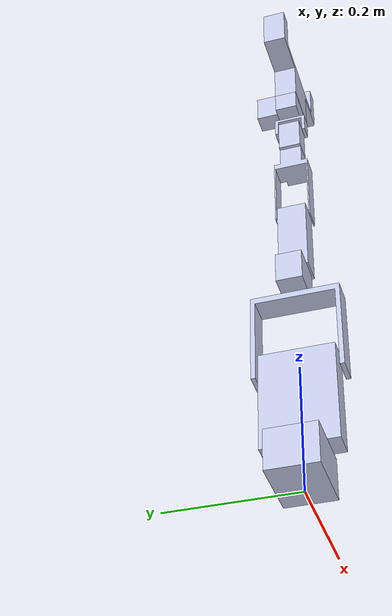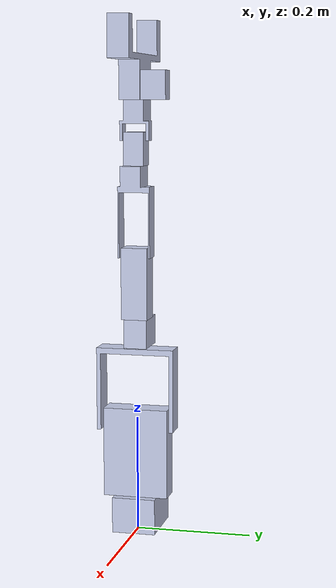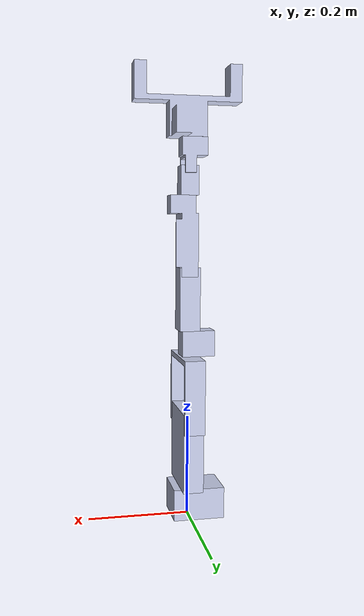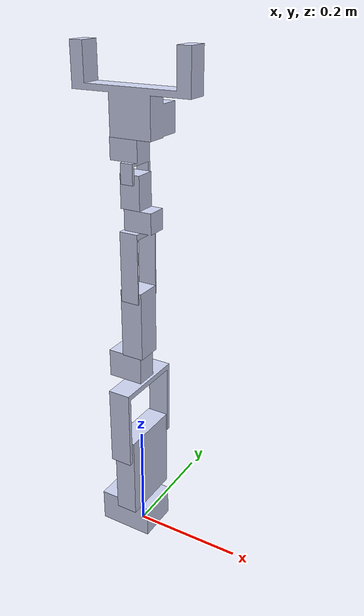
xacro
<?xml version="1.0" ?>
<!-- Revolute-Revolute Manipulator -->
<robot name="finalarm_simplified" xmlns:xacro="http://www.ros.org/wiki/xacro">
  <!-- Import all Gazebo-customization elements -->
  <xacro:include
    filename="$(find finalarm_simplified_description)/urdf/finalarm_simplified.gazebo"
  />

  <link name="root">
    <visual>
      <origin xyz="0 0 0" rpy="0 0 0" />
      <geometry>
        <box size="0 0 0" />
      </geometry>
    </visual>
    <collision>
      <origin xyz="0 0 0" rpy="0 0 0" />
      <geometry>
        <box size="0 0 0" />
      </geometry>
    </collision>
  </link>

  <!-- Used for fixing robot to Gazebo 'base_link' -->
  <link name="world" />

  <joint name="connect_root_and_world" type="fixed">
    <parent link="world" />
    <child link="root" />
    <axis xyz="0 0 0" />
    <origin xyz="0 0 0" rpy="0 0 0" />
  </joint>

  <joint name="root_to_base_link" type="fixed">
    <parent link="root" />
    <child link="base_link" />
    <axis xyz="0 0 0" />
    <origin xyz="0 0 0" rpy="0 0 0" />
  </joint>

  <link name="base_link">
    <inertial>
      <origin xyz="-0.0164 -8.67361737988404E-19 0.0311" rpy="0 0 0" />
      <mass value="0.481547424" />
      <inertia
        ixx="0.00259388526"
        ixy="-0.00000005038"
        ixz="-0.00033538856"
        iyy="0.00279542583"
        iyz="-0.00000008121"
        izz="0.00116940616"
      />
    </inertial>
    <visual>
      <origin xyz="0 0 0" rpy="0 0 0" />
      <geometry>
        <mesh
          filename="package://finalarm_simplified_description/meshes/base_link.STL"
        />
      </geometry>
      <material name="">
        <color rgba="0.792156862745098 0.819607843137255 0.933333333333333 1" />
      </material>
    </visual>
    <collision>
      <origin xyz="0 0 0" rpy="0 0 0" />
      <geometry>
        <mesh
          filename="package://finalarm_simplified_description/meshes/base_link.STL"
        />
      </geometry>
    </collision>
  </link>
  <link name="link_2">
    <inertial>
      <origin
        xyz="-1.38777878078145E-17 -4.33680868994202E-18 -0.078375"
        rpy="0 0 0"
      />
      <mass value="0.7142784" />
      <inertia
        ixx="0.00096626194"
        ixy="-0.00000006431"
        ixz="0.00000032990"
        iyy="0.00575735994"
        iyz="-0.00039309867"
        izz="0.00066079574"
      />
    </inertial>
    <visual>
      <origin xyz="0 0 0" rpy="0 0 0" />
      <geometry>
        <mesh
          filename="package://finalarm_simplified_description/meshes/link_2.STL"
        />
      </geometry>
      <material name="">
        <color rgba="0.792156862745098 0.819607843137255 0.933333333333333 1" />
      </material>
    </visual>
    <collision>
      <origin xyz="0 0 0" rpy="0 0 0" />
      <geometry>
        <mesh
          filename="package://finalarm_simplified_description/meshes/link_2.STL"
        />
      </geometry>
    </collision>
  </link>
  <joint name="joint_1" type="revolute">
    <origin xyz="0 0 0.0622" rpy="3.1416 0 3.1416" />
    <parent link="base_link" />
    <child link="link_2" />
    <axis xyz="0 0 -1" />
    <limit lower="-3.14" upper="3.14" effort="6" velocity="2" />
    <dynamics damping="0.5" />
  </joint>
  <link name="link_3">
    <inertial>
      <origin
        xyz="0.00913796893535261 -0.110721113647521 0.000700000000000008"
        rpy="0 0 0"
      />
      <mass value="0.26363602" />
      <inertia
        ixx="0.00067487030"
        ixy="-0.00005184685"
        ixz="-0.00000255096"
        iyy="0.00024791507"
        iyz="0.00002448920"
        izz="0.000052259169"
      />
    </inertial>
    <visual>
      <origin xyz="0 0 0" rpy="0 0 0" />
      <geometry>
        <mesh
          filename="package://finalarm_simplified_description/meshes/link_3.STL"
        />
      </geometry>
      <material name="">
        <color rgba="0.792156862745098 0.819607843137255 0.933333333333333 1" />
      </material>
    </visual>
    <collision>
      <origin xyz="0 0 0" rpy="0 0 0" />
      <geometry>
        <mesh
          filename="package://finalarm_simplified_description/meshes/link_3.STL"
        />
      </geometry>
    </collision>
  </link>
  <joint name="joint_2" type="revolute">
    <origin xyz="0 0 -0.14225" rpy="1.5708 0 0" />
    <parent link="link_2" />
    <child link="link_3" />
    <axis xyz="0 0 1" />
    <limit lower="-2.35" upper="2.35" effort="6" velocity="2" />
    <dynamics damping="0.5" />
  </joint>
  <link name="link_4">
    <inertial>
      <origin xyz="0 -8.67361737988404E-19 -0.06225" rpy="0 0 0" />
      <mass value="0.2302254" />
      <inertia
        ixx="0.00012288342"
        ixy="-0.00000000216"
        ixz="0.00000001618"
        iyy="0.00011093520"
        iyz="0.00000039768"
        izz="0.00002956657"
      />
    </inertial>
    <visual>
      <origin xyz="0 0 0" rpy="0 0 0" />
      <geometry>
        <mesh
          filename="package://finalarm_simplified_description/meshes/link_4.STL"
        />
      </geometry>
      <material name="">
        <color rgba="0.792156862745098 0.819607843137255 0.933333333333333 1" />
      </material>
    </visual>
    <collision>
      <origin xyz="0 0 0" rpy="0 0 0" />
      <geometry>
        <mesh
          filename="package://finalarm_simplified_description/meshes/link_4.STL"
        />
      </geometry>
    </collision>
  </link>
  <joint name="joint_3" type="revolute">
    <origin xyz="0 -0.1721 0.0007" rpy="-1.5708 0 0" />
    <parent link="link_3" />
    <child link="link_4" />
    <axis xyz="0 0 -1" />
    <limit lower="-3.14" upper="3.14" effort="6" velocity="2" />
    <dynamics damping="0.5" />
  </joint>
  <link name="link_5">
    <inertial>
      <origin
        xyz="-0.00941019053261395 0.12018845656372 -0.00050000000000005"
        rpy="0 0 0"
      />
      <mass value="0.09729148" />
      <inertia
        ixx="0.00014398020"
        ixy="-0.00001235082"
        ixz="0.00000001592"
        iyy="0.00003078676"
        iyz="0.00000000000"
        izz="0.00013784036"
      />
    </inertial>
    <visual>
      <origin xyz="0 0 0" rpy="0 0 0" />
      <geometry>
        <mesh
          filename="package://finalarm_simplified_description/meshes/link_5.STL"
        />
      </geometry>
      <material name="">
        <color rgba="0.792156862745098 0.819607843137255 0.933333333333333 1" />
      </material>
    </visual>
    <collision>
      <origin xyz="0 0 0" rpy="0 0 0" />
      <geometry>
        <mesh
          filename="package://finalarm_simplified_description/meshes/link_5.STL"
        />
      </geometry>
    </collision>
  </link>
  <joint name="joint_4" type="revolute">
    <origin xyz="0 0 -0.11" rpy="-1.5708 0 0" />
    <parent link="link_4" />
    <child link="link_5" />
    <axis xyz="0 0 -1" />
    <limit lower="-2.6" upper="2.6" effort="6" velocity="2" />
    <dynamics damping="0.5" />
  </joint>
  <link name="link_6">
    <inertial>
      <origin xyz="0 0 -0.0284" rpy="0 0 0" />
      <mass value="0.0717838399999999" />
      <inertia
        ixx="0.00001425862"
        ixy="0.00000000002"
        ixz="0.00000001440"
        iyy="0.00001225892"
        iyz="-0.00000018076"
        izz="0.00000782673"
      />
    </inertial>
    <visual>
      <origin xyz="0 0 0" rpy="0 0 0" />
      <geometry>
        <mesh
          filename="package://finalarm_simplified_description/meshes/link_6.STL"
        />
      </geometry>
      <material name="">
        <color rgba="0.792156862745098 0.819607843137255 0.933333333333333 1" />
      </material>
    </visual>
    <collision>
      <origin xyz="0 0 0" rpy="0 0 0" />
      <geometry>
        <mesh
          filename="package://finalarm_simplified_description/meshes/link_6.STL"
        />
      </geometry>
    </collision>
  </link>
  <joint name="joint_5" type="revolute">
    <origin xyz="0 0.1551 -0.0005" rpy="-1.5708 0 3.1416" />
    <parent link="link_5" />
    <child link="link_6" />
    <axis xyz="0 0 -1" />
    <limit lower="-3.14" upper="3.14" effort="6" velocity="2" />
    <dynamics damping="0.5" />
  </joint>
  <link name="link_7">
    <inertial>
      <origin
        xyz="-0.00826463614894074 0.044192432559462 0.000250000000000077"
        rpy="0 0 0"
      />
      <mass value="0.07582828" />
      <inertia
        ixx="0.00002339630"
        ixy="-0.00000217744"
        ixz="0.00000002669"
        iyy="0.00001609019"
        iyz="-0.00000018683"
        izz="0.00002459523"
      />
    </inertial>
    <visual>
      <origin xyz="0 0 0" rpy="0 0 0" />
      <geometry>
        <mesh
          filename="package://finalarm_simplified_description/meshes/link_7.STL"
        />
      </geometry>
      <material name="">
        <color rgba="0.792156862745098 0.819607843137255 0.933333333333333 1" />
      </material>
    </visual>
    <collision>
      <origin xyz="0 0 0" rpy="0 0 0" />
      <geometry>
        <mesh
          filename="package://finalarm_simplified_description/meshes/link_7.STL"
        />
      </geometry>
    </collision>
  </link>
  <joint name="joint_6" type="revolute">
    <origin xyz="0 0 -0.0448" rpy="-1.5708 0 0" />
    <parent link="link_6" />
    <child link="link_7" />
    <axis xyz="0 0 1" />
    <limit lower="-1.75" upper="1.75" effort="6" velocity="2" />
    <dynamics damping="0.5" />
  </joint>
  <link name="link_8">
    <inertial>
      <origin
        xyz="-0.00258077730485411 0.00608919416388292 -0.0569223421804808"
        rpy="0 0 0"
      />
      <mass value="0.4263865924" />
      <inertia
        ixx="0.00069912591"
        ixy="-0.00003847590"
        ixz="-0.00003706028"
        iyy="0.00186495000"
        iyz="0.00008417977"
        izz="0.00144091562"
      />
    </inertial>
    <visual>
      <origin xyz="0 0 0" rpy="0 0 0" />
      <geometry>
        <mesh
          filename="package://finalarm_simplified_description/meshes/link_8.STL"
        />
      </geometry>
      <material name="">
        <color rgba="0.792156862745098 0.819607843137255 0.933333333333333 1" />
      </material>
    </visual>
    <collision>
      <origin xyz="0 0 0" rpy="0 0 0" />
      <geometry>
        <mesh
          filename="package://finalarm_simplified_description/meshes/link_8.STL"
        />
      </geometry>
    </collision>
  </link>
  <joint name="joint_7" type="revolute">
    <origin xyz="0.0035 0.0665 0.00025" rpy="-1.5708 0 3.1416" />
    <parent link="link_7" />
    <child link="link_8" />
    <axis xyz="0 0 -1" />
    <limit lower="-3.14" upper="3.14" effort="6" velocity="2" />
    <dynamics damping="0.5" />
  </joint>
  <link name="link_eef" />
  <joint name="joint_eef" type="fixed">
    <origin xyz="0 0 -0.13275" rpy="3.14159265358979 0 3.14159265358979" />
    <parent link="link_8" />
    <child link="link_eef" />
    <axis xyz="0 0 0" />
  </joint>

  <!-- transmission that link actuators to joints-->
  <transmission name="tran1">
    <type>transmission_interface/SimpleTransmission</type>
    <joint name="joint_1">
      <hardwareInterface
      >hardware_interface/PositionJointInterface</hardwareInterface>
    </joint>
    <actuator name="motor_1">
      <hardwareInterface
      >hardware_interface/PositionJointInterface</hardwareInterface>
      <mechanicalReduction>1</mechanicalReduction>
    </actuator>
  </transmission>

  <transmission name="tran2">
    <type>transmission_interface/SimpleTransmission</type>
    <joint name="joint_2">
      <hardwareInterface
      >hardware_interface/PositionJointInterface</hardwareInterface>
    </joint>
    <actuator name="motor_2">
      <hardwareInterface
      >hardware_interface/PositionJointInterface</hardwareInterface>
      <mechanicalReduction>1</mechanicalReduction>
    </actuator>
  </transmission>

  <transmission name="tran3">
    <type>transmission_interface/SimpleTransmission</type>
    <joint name="joint_3">
      <hardwareInterface
      >hardware_interface/PositionJointInterface</hardwareInterface>
    </joint>
    <actuator name="motor_3">
      <hardwareInterface
      >hardware_interface/PositionJointInterface</hardwareInterface>
      <mechanicalReduction>1</mechanicalReduction>
    </actuator>
  </transmission>

  <transmission name="tran4">
    <type>transmission_interface/SimpleTransmission</type>
    <joint name="joint_4">
      <hardwareInterface
      >hardware_interface/PositionJointInterface</hardwareInterface>
    </joint>
    <actuator name="motor_4">
      <hardwareInterface
      >hardware_interface/PositionJointInterface</hardwareInterface>
      <mechanicalReduction>1</mechanicalReduction>
    </actuator>
  </transmission>

  <transmission name="tran5">
    <type>transmission_interface/SimpleTransmission</type>
    <joint name="joint_5">
      <hardwareInterface
      >hardware_interface/PositionJointInterface</hardwareInterface>
    </joint>
    <actuator name="motor_5">
      <hardwareInterface
      >hardware_interface/PositionJointInterface</hardwareInterface>
      <mechanicalReduction>1</mechanicalReduction>
    </actuator>
  </transmission>

  <transmission name="tran6">
    <type>transmission_interface/SimpleTransmission</type>
    <joint name="joint_6">
      <hardwareInterface
      >hardware_interface/PositionJointInterface</hardwareInterface>
    </joint>
    <actuator name="motor_6">
      <hardwareInterface
      >hardware_interface/PositionJointInterface</hardwareInterface>
      <mechanicalReduction>1</mechanicalReduction>
    </actuator>
  </transmission>

  <transmission name="tran7">
    <type>transmission_interface/SimpleTransmission</type>
    <joint name="joint_7">
      <hardwareInterface
      >hardware_interface/PositionJointInterface</hardwareInterface>
    </joint>
    <actuator name="motor_7">
      <hardwareInterface
      >hardware_interface/PositionJointInterface</hardwareInterface>
      <mechanicalReduction>1</mechanicalReduction>
    </actuator>
  </transmission>
</robot>
